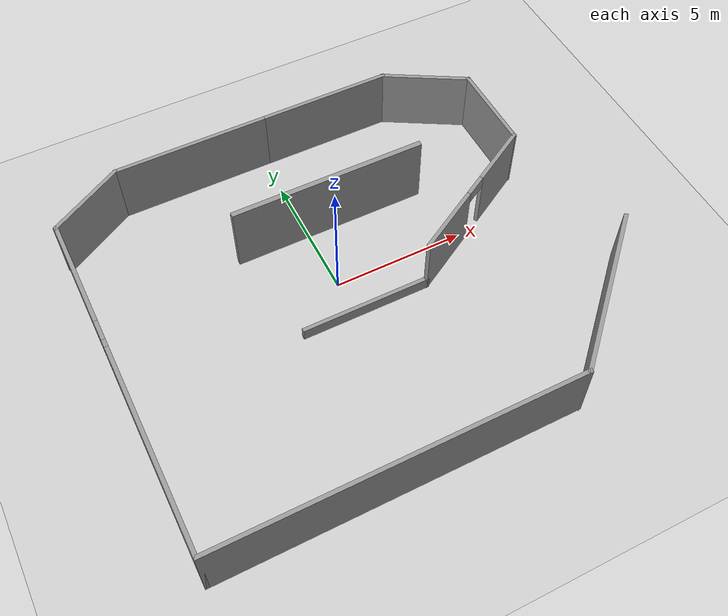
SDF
<sdf version="1.7">
 <world name="default">
  <light name="sun" type="directional">
   <pose>0 0 10 0 -0 0</pose>
   <diffuse>0.8 0.8 0.8 1</diffuse>
   <specular>0.2 0.2 0.2 1</specular>
   <attenuation>
    <range>1000</range>
    <constant>0.9</constant>
    <linear>0.01</linear>
    <quadratic>0.001</quadratic>
   </attenuation>
   <direction>-0.5 0.1 -0.9</direction>
   <spot><inner_angle>0</inner_angle><outer_angle>0</outer_angle><falloff>0</falloff></spot>
  </light>
  <model name="ground_plane">
   <static>1</static>
   <link name="link">
    <collision name="collision">
     <geometry><plane><normal>0 0 1</normal><size>100 100</size></plane></geometry>
     <surface><friction><ode><mu>100</mu><mu2>50</mu2></ode></friction></surface>
    </collision>
    <visual name="visual">
     <cast_shadows>0</cast_shadows>
     <geometry><plane><normal>0 0 1</normal><size>100 100</size></plane></geometry>
     <material>
      <script><uri>file://media/materials/scripts/gazebo.material</uri><name>Gazebo/Grey</name></script>
     </material>
    </visual>
   </link>
  </model>
  <gravity>0 0 -9.8</gravity>
  <magnetic_field>6e-06 2.3e-05 -4.2e-05</magnetic_field>
  <atmosphere type="adiabatic"/>
  <physics type="ode">
   <max_step_size>0.001</max_step_size>
   <real_time_factor>1</real_time_factor>
   <real_time_update_rate>1000</real_time_update_rate>
  </physics>
  <scene><ambient>0.4 0.4 0.4 1</ambient><background>0.7 0.7 0.7 1</background><shadows>1</shadows></scene>
  <audio><device>default</device></audio>
  <spherical_coordinates>
   <surface_model>EARTH_WGS84</surface_model>
   <latitude_deg>0</latitude_deg>
   <longitude_deg>0</longitude_deg>
   <elevation>0</elevation>
   <heading_deg>0</heading_deg>
  </spherical_coordinates>
  <model name="grey_wall">
   <static>1</static>
   <link name="link">
    <pose>0 0 1.4 0 -0 0</pose>
    <collision name="collision"><geometry><box><size>7.5 0.2 2.8</size></box></geometry></collision>
    <visual name="visual">
     <cast_shadows>0</cast_shadows>
     <geometry><box><size>7.5 0.2 2.8</size></box></geometry>
     <material>
      <script>
       <uri>model://grey_wall/materials/scripts</uri>
       <uri>model://grey_wall/materials/textures</uri>
       <name>vrc/grey_wall</name>
      </script>
     </material>
    </visual>
   </link>
   <pose>0.930052 2.56579 0 0 -0 0</pose>
  </model>
  <model name="1st_world">
   <pose>0.59715 -0.781807 0 0 -0 0</pose>
   <link name="Wall_0">
    <collision name="Wall_0_Collision">
     <geometry><box><size>5 0.15 0.5</size></box></geometry>
     <pose>0 0 0.25 0 -0 0</pose>
    </collision>
    <visual name="Wall_0_Visual">
     <pose>0 0 0.25 0 -0 0</pose>
     <geometry><box><size>5 0.15 0.5</size></box></geometry>
     <material>
      <script><uri>file://media/materials/scripts/gazebo.material</uri><name>Gazebo/Grey</name></script>
      <ambient>1 1 1 1</ambient>
     </material>
     <meta><layer>0</layer></meta>
    </visual>
    <pose>-0.18215 -0.698193 0 0 -0 0</pose>
   </link>
   <link name="Wall_1">
    <pose>4.88423 0.826807 0 0 -0 0.523599</pose>
    <visual name="Wall_1_Visual_0">
     <pose>-1.72454 0 1.25 0 -0 0</pose>
     <geometry><box><size>2.80092 0.15 2.5</size></box></geometry>
     <material>
      <script><uri>file://media/materials/scripts/gazebo.material</uri><name>Gazebo/Grey</name></script>
      <ambient>1 1 1 1</ambient>
     </material>
     <meta><layer>0</layer></meta>
    </visual>
    <collision name="Wall_1_Collision_0">
     <geometry><box><size>2.80092 0.15 2.5</size></box></geometry>
     <pose>-1.72454 0 1.25 0 -0 0</pose>
    </collision>
    <visual name="Wall_1_Visual_1">
     <pose>1.85046 0 1.25 0 -0 0</pose>
     <geometry><box><size>2.54908 0.15 2.5</size></box></geometry>
     <material>
      <script><uri>file://media/materials/scripts/gazebo.material</uri><name>Gazebo/Grey</name></script>
      <ambient>1 1 1 1</ambient>
     </material>
     <meta><layer>0</layer></meta>
    </visual>
    <collision name="Wall_1_Collision_1">
     <geometry><box><size>2.54908 0.15 2.5</size></box></geometry>
     <pose>1.85046 0 1.25 0 -0 0</pose>
    </collision>
    <visual name="Wall_1_Visual_2">
     <pose>0.125918 0 2.25 0 -0 0</pose>
     <geometry><box><size>0.9 0.15 0.5</size></box></geometry>
     <material>
      <script><uri>file://media/materials/scripts/gazebo.material</uri><name>Gazebo/Grey</name></script>
      <ambient>1 1 1 1</ambient>
     </material>
     <meta><layer>0</layer></meta>
    </visual>
    <collision name="Wall_1_Collision_2">
     <geometry><box><size>0.9 0.15 0.5</size></box></geometry>
     <pose>0.125918 0 2.25 0 -0 0</pose>
    </collision>
   </link>
   <link name="Wall_10">
    <collision name="Wall_10_Collision">
     <geometry><box><size>6.75 0.15 2.5</size></box></geometry>
     <pose>0 0 1.25 0 -0 0</pose>
    </collision>
    <visual name="Wall_10_Visual">
     <pose>0 0 1.25 0 -0 0</pose>
     <geometry><box><size>6.75 0.15 2.5</size></box></geometry>
     <material>
      <script><uri>file://media/materials/scripts/gazebo.material</uri><name>Gazebo/Grey</name></script>
      <ambient>1 1 1 1</ambient>
     </material>
     <meta><layer>0</layer></meta>
    </visual>
    <pose>6.67319 -5.03974 0 0 -0 0.785398</pose>
   </link>
   <link name="Wall_2">
    <collision name="Wall_2_Collision">
     <geometry><box><size>3.5 0.15 2.5</size></box></geometry>
     <pose>0 0 1.25 0 -0 0</pose>
    </collision>
    <visual name="Wall_2_Visual">
     <pose>0 0 1.25 0 -0 0</pose>
     <geometry><box><size>3.5 0.15 2.5</size></box></geometry>
     <material>
      <script><uri>file://media/materials/scripts/gazebo.material</uri><name>Gazebo/Grey</name></script>
      <ambient>1 1 1 1</ambient>
     </material>
     <meta><layer>0</layer></meta>
    </visual>
    <pose>7.5256 4.02681 0 0 -0 1.5708</pose>
   </link>
   <link name="Wall_3">
    <collision name="Wall_3_Collision">
     <geometry><box><size>3.5 0.15 2.5</size></box></geometry>
     <pose>0 0 1.25 0 -0 0</pose>
    </collision>
    <visual name="Wall_3_Visual">
     <pose>0 0 1.25 0 -0 0</pose>
     <geometry><box><size>3.5 0.15 2.5</size></box></geometry>
     <material>
      <script><uri>file://media/materials/scripts/gazebo.material</uri><name>Gazebo/Grey</name></script>
      <ambient>1 1 1 1</ambient>
     </material>
     <meta><layer>0</layer></meta>
    </visual>
    <pose>6.07501 6.53931 0 0 -0 2.61799</pose>
   </link>
   <link name="Wall_4">
    <collision name="Wall_4_Collision">
     <geometry><box><size>5.25 0.15 2.5</size></box></geometry>
     <pose>0 0 1.25 0 -0 0</pose>
    </collision>
    <visual name="Wall_4_Visual">
     <pose>0 0 1.25 0 -0 0</pose>
     <geometry><box><size>5.25 0.15 2.5</size></box></geometry>
     <material>
      <script><uri>file://media/materials/scripts/gazebo.material</uri><name>Gazebo/Grey</name></script>
      <ambient>1 1 1 1</ambient>
     </material>
     <meta><layer>0</layer></meta>
    </visual>
    <pose>2.07442 7.37681 0 0 -0 3.14159</pose>
   </link>
   <link name="Wall_5">
    <collision name="Wall_5_Collision">
     <geometry><box><size>6 0.15 2.5</size></box></geometry>
     <pose>0 0 1.25 0 -0 0</pose>
    </collision>
    <visual name="Wall_5_Visual">
     <pose>0 0 1.25 0 -0 0</pose>
     <geometry><box><size>6 0.15 2.5</size></box></geometry>
     <material>
      <script><uri>file://media/materials/scripts/gazebo.material</uri><name>Gazebo/Grey</name></script>
      <ambient>1 1 1 1</ambient>
     </material>
     <meta><layer>0</layer></meta>
    </visual>
    <pose>-3.40058 7.37681 0 0 -0 3.14159</pose>
   </link>
   <link name="Wall_6">
    <collision name="Wall_6_Collision">
     <geometry><box><size>3.25 0.15 2.5</size></box></geometry>
     <pose>0 0 1.25 0 -0 0</pose>
    </collision>
    <visual name="Wall_6_Visual">
     <pose>0 0 1.25 0 -0 0</pose>
     <geometry><box><size>3.25 0.15 2.5</size></box></geometry>
     <material>
      <script><uri>file://media/materials/scripts/gazebo.material</uri><name>Gazebo/Grey</name></script>
      <ambient>1 1 1 1</ambient>
     </material>
     <meta><layer>0</layer></meta>
    </visual>
    <pose>-7.66792 6.60181 0 0 -0 -2.61799</pose>
   </link>
   <link name="Wall_7">
    <pose>-9.01026 3.15181 0 0 -0 -1.5708</pose>
    <visual name="Wall_7_Visual_0">
     <pose>-0.553728 0 1.25 0 -0 0</pose>
     <geometry><box><size>4.39254 0.15 2.5</size></box></geometry>
     <material>
      <script><uri>file://media/materials/scripts/gazebo.material</uri><name>Gazebo/Grey</name></script>
      <ambient>1 1 1 1</ambient>
     </material>
     <meta><layer>0</layer></meta>
    </visual>
    <collision name="Wall_7_Collision_0">
     <geometry><box><size>4.39254 0.15 2.5</size></box></geometry>
     <pose>-0.553728 0 1.25 0 -0 0</pose>
    </collision>
    <visual name="Wall_7_Visual_1">
     <pose>2.19627 0 0.25 0 -0 0</pose>
     <geometry><box><size>1.10746 0.15 0.5</size></box></geometry>
     <material>
      <script><uri>file://media/materials/scripts/gazebo.material</uri><name>Gazebo/Grey</name></script>
      <ambient>1 1 1 1</ambient>
     </material>
     <meta><layer>0</layer></meta>
    </visual>
    <collision name="Wall_7_Collision_1">
     <geometry><box><size>1.10746 0.15 0.5</size></box></geometry>
     <pose>2.19627 0 0.25 0 -0 0</pose>
    </collision>
    <visual name="Wall_7_Visual_2">
     <pose>2.59627 0 1.5 0 -0 0</pose>
     <geometry><box><size>0.307456 0.15 2</size></box></geometry>
     <material>
      <script><uri>file://media/materials/scripts/gazebo.material</uri><name>Gazebo/Grey</name></script>
      <ambient>1 1 1 1</ambient>
     </material>
     <meta><layer>0</layer></meta>
    </visual>
    <collision name="Wall_7_Collision_2">
     <geometry><box><size>0.307456 0.15 2</size></box></geometry>
     <pose>2.59627 0 1.5 0 -0 0</pose>
    </collision>
    <visual name="Wall_7_Visual_3">
     <pose>2.04254 0 1.9 0 -0 0</pose>
     <geometry><box><size>0.8 0.15 1.2</size></box></geometry>
     <material>
      <script><uri>file://media/materials/scripts/gazebo.material</uri><name>Gazebo/Grey</name></script>
      <ambient>1 1 1 1</ambient>
     </material>
     <meta><layer>0</layer></meta>
    </visual>
    <collision name="Wall_7_Collision_3">
     <geometry><box><size>0.8 0.15 1.2</size></box></geometry>
     <pose>2.04254 0 1.9 0 -0 0</pose>
    </collision>
   </link>
   <link name="Wall_8">
    <collision name="Wall_8_Collision">
     <geometry><box><size>8 0.15 2.5</size></box></geometry>
     <pose>0 0 1.25 0 -0 0</pose>
    </collision>
    <visual name="Wall_8_Visual">
     <pose>0 0 1.25 0 -0 0</pose>
     <geometry><box><size>8 0.15 2.5</size></box></geometry>
     <material>
      <script><uri>file://media/materials/scripts/gazebo.material</uri><name>Gazebo/Grey</name></script>
      <ambient>1 1 1 1</ambient>
     </material>
     <meta><layer>0</layer></meta>
    </visual>
    <pose>-9.01026 -3.44819 0 0 -0 -1.5708</pose>
   </link>
   <link name="Wall_9">
    <collision name="Wall_9_Collision">
     <geometry><box><size>13.5 0.15 2.5</size></box></geometry>
     <pose>0 0 1.25 0 -0 0</pose>
    </collision>
    <visual name="Wall_9_Visual">
     <pose>0 0 1.25 0 -0 0</pose>
     <geometry><box><size>13.5 0.15 2.5</size></box></geometry>
     <material>
      <script><uri>file://media/materials/scripts/gazebo.material</uri><name>Gazebo/Grey</name></script>
      <ambient>1 1 1 1</ambient>
     </material>
     <meta><layer>0</layer></meta>
    </visual>
    <pose>-2.33526 -7.37319 0 0 -0 0</pose>
   </link>
   <static>1</static>
  </model>
 </world>
</sdf>
